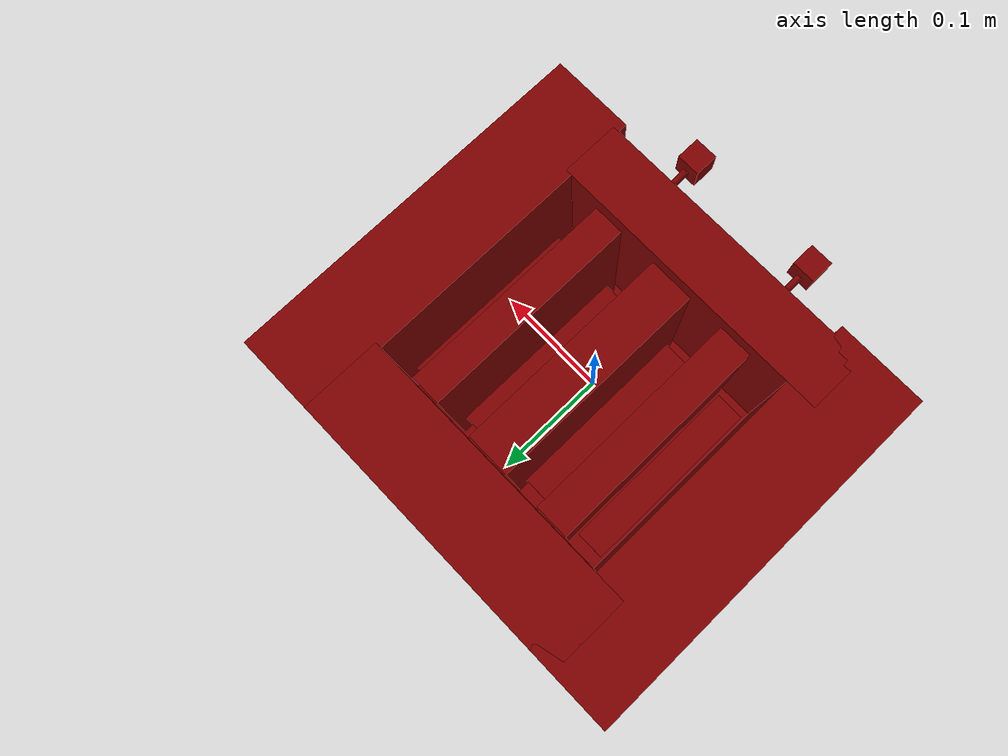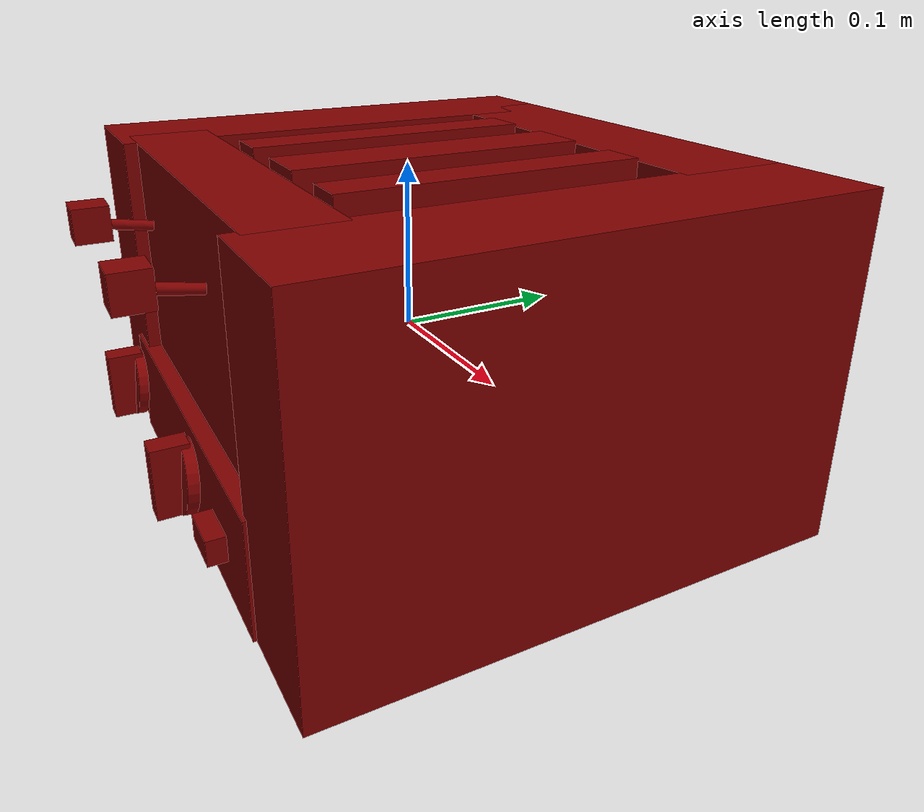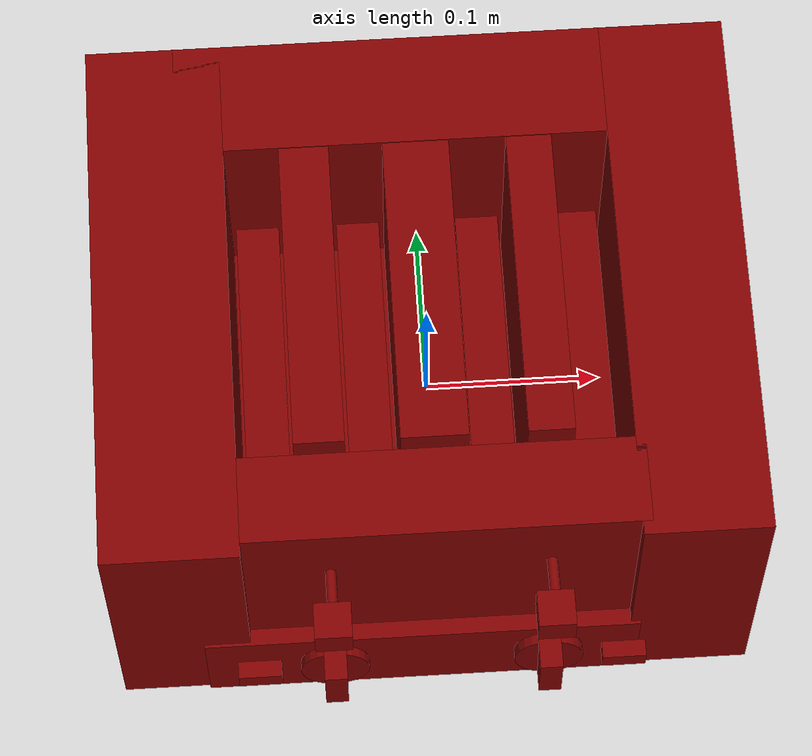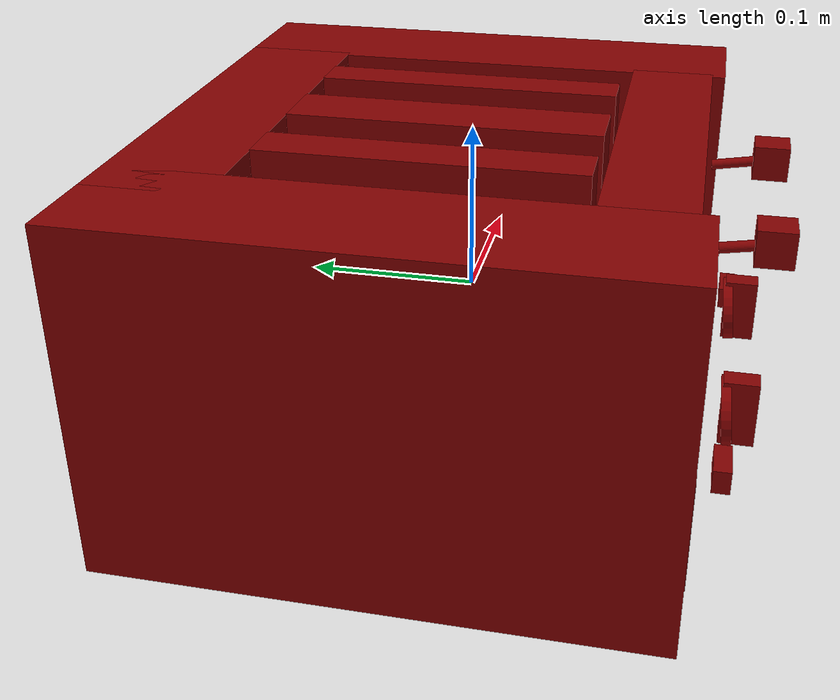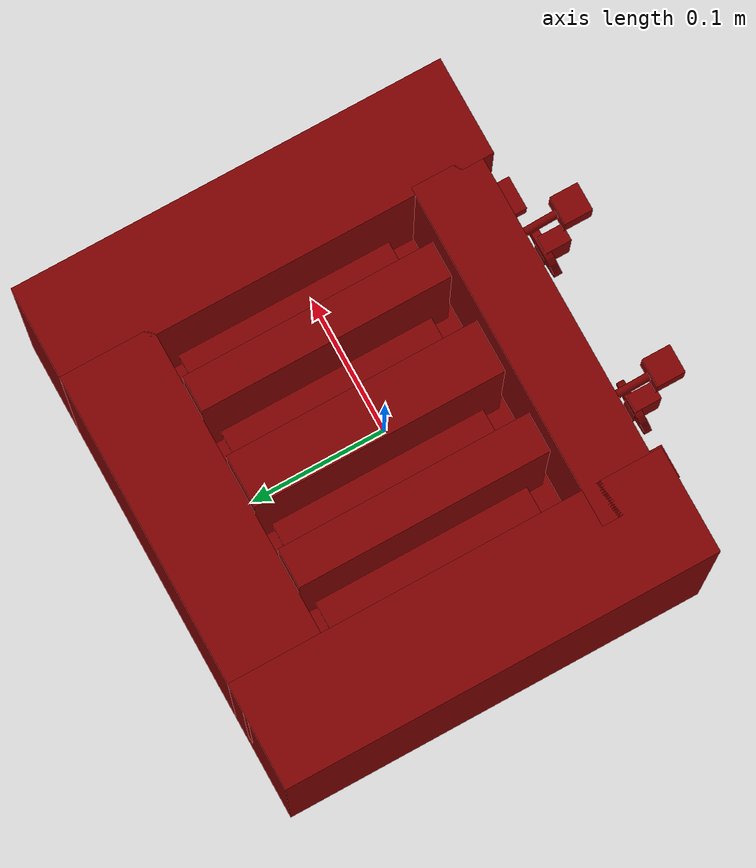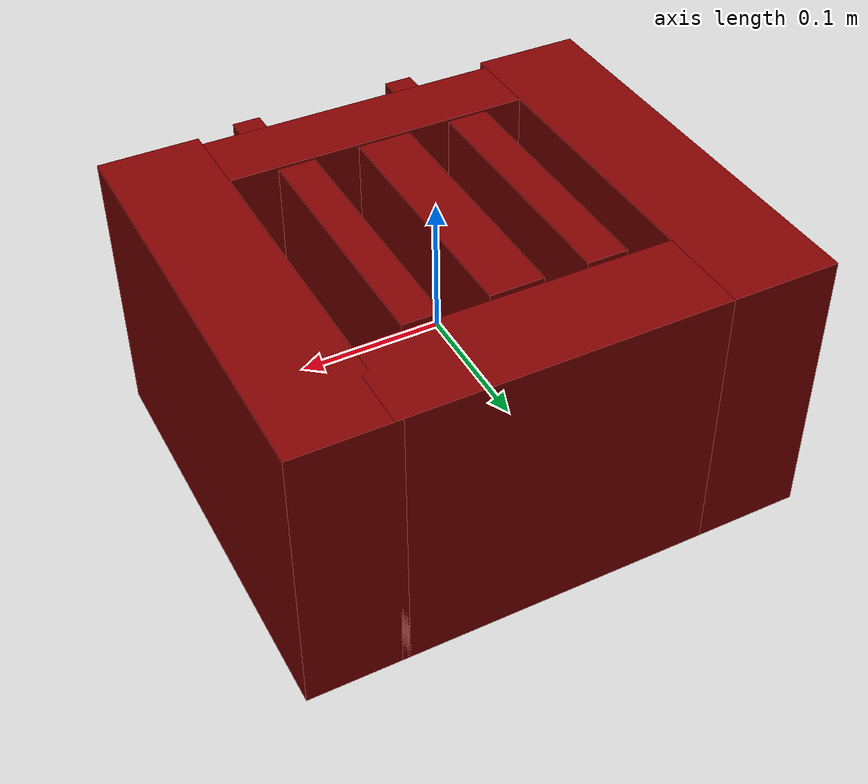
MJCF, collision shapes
<?xml version='1.0' encoding='UTF-8'?>
<mujoco model="model">
  <option timestep="0.002" gravity="0.0 0.0 -9.81"/>
  <compiler angle="radian"/>
  <asset>
    <mesh file="visuals/sideL_button_cancel.obj" name="sideL_button_cancel_vis"/>
    <mesh file="visuals/sideL_knob_doneness.obj" name="sideL_knob_doneness_vis"/>
    <mesh file="visuals/sideL_lever.obj" name="sideL_lever_vis"/>
    <mesh file="visuals/sideR_button_cancel.obj" name="sideR_button_cancel_vis"/>
    <mesh file="visuals/sideR_knob_doneness.obj" name="sideR_knob_doneness_vis"/>
    <mesh file="visuals/sideR_lever.obj" name="sideR_lever_vis"/>
    <mesh file="visuals/Body001.obj" name="Body001_vis"/>
    <mesh file="visuals/Body002.obj" name="Body002_vis"/>
    <texture file="visuals/T_BC001.png" name="Body001_material" type="2d"/>
    <material name="Body001_material" rgba="1 1 1 1.0" texture="Body001_material" shininess="0.4472135901451111" specular="0.3103448502657381"/>
    <texture file="visuals/T_BC001.png" name="sideL_button_cancel_material" type="2d"/>
    <material name="sideL_button_cancel_material" rgba="1 1 1 1.0" texture="sideL_button_cancel_material" shininess="0.4472135901451111" specular="0.3103448502657381"/>
    <texture file="visuals/T_BC001.png" name="sideL_knob_doneness_material" type="2d"/>
    <material name="sideL_knob_doneness_material" rgba="1 1 1 1.0" texture="sideL_knob_doneness_material" shininess="0.4472135901451111" specular="0.3103448502657381"/>
    <texture file="visuals/T_BC001.png" name="sideL_lever_material" type="2d"/>
    <material name="sideL_lever_material" rgba="1 1 1 1.0" texture="sideL_lever_material" shininess="0.4472135901451111" specular="0.3103448502657381"/>
    <texture file="visuals/T_BC001.png" name="sideR_button_cancel_material" type="2d"/>
    <material name="sideR_button_cancel_material" rgba="1 1 1 1.0" texture="sideR_button_cancel_material" shininess="0.4472135901451111" specular="0.3103448502657381"/>
    <texture file="visuals/T_BC001.png" name="sideR_knob_doneness_material" type="2d"/>
    <material name="sideR_knob_doneness_material" rgba="1 1 1 1.0" texture="sideR_knob_doneness_material" shininess="0.4472135901451111" specular="0.3103448502657381"/>
    <texture file="visuals/T_BC001.png" name="sideR_lever_material" type="2d"/>
    <material name="sideR_lever_material" rgba="1 1 1 1.0" texture="sideR_lever_material" shininess="0.4472135901451111" specular="0.3103448502657381"/>
    <texture file="visuals/T_BC001.png" name="Body002_material" type="2d"/>
    <material name="Body002_material" rgba="1 1 1 1.0" texture="Body002_material" shininess="0.4472135901451111" specular="8"/>
  </asset>
  <default>
    <default class="visual">
      <geom conaffinity="0" contype="0" group="1" type="mesh"/>
    </default>
    <default class="collision_1">
      <geom group="0" rgba="0.5 0 0 0.5" solref="0.004 1" solimp="0.998 0.998 0.001"/>
    </default>
    <default class="collision_2">
      <geom group="0" rgba="0.5 0 0 0.5" solref="0.004 1" solimp="0.998 0.998 0.001"/>
    </default>
    <default class="collision_3">
      <geom group="0" rgba="0.5 0 0 0.5" solref="0.004 1" solimp="0.998 0.998 0.001"/>
    </default>
    <default class="collision_4">
      <geom group="0" rgba="0.5 0 0 0.5" solref="0.004 1" solimp="0.998 0.998 0.001"/>
    </default>
    <default class="collision_5">
      <geom group="0" rgba="0.5 0 0 0.5" solref="0.004 1" solimp="0.998 0.998 0.001"/>
    </default>
    <default class="collision_6">
      <geom group="0" rgba="0.5 0 0 0.5" solref="0.004 1" solimp="0.998 0.998 0.001"/>
    </default>
    <default class="collision_7">
      <geom group="0" rgba="0.5 0 0 0.5" solref="0.004 1" solimp="0.998 0.998 0.001"/>
    </default>
    <default class="collision_8">
      <geom group="0" rgba="0.5 0 0 0.5" solref="0.004 1" solimp="0.998 0.998 0.001"/>
    </default>
    <default class="spawn">
      <geom group="0" rgba="1 1 1 0.5" contype="0" conaffinity="0"/>
      <site group="0" rgba="1 1 1 0.5"/>
    </default>
    <default class="region">
      <geom group="1" conaffinity="0" contype="0" rgba="0 1 0 0" mass="0"/>
    </default>
  </default>
  <worldbody>
    <body>
      <body name="object">
        <geom mesh="Body001_vis" type="mesh" solimp="0.998 0.998 0.001" solref="0.001 1" friction="0.95 0.3 0.1" class="visual" material="Body001_material"/>
        <geom type="box" pos="-0.1482546031475067 0.016965089365839958 0.0018764408305287361" size="0.038420096039772034 0.15769177675247192 0.10269986838102341" quat="1.0 0.0 0.0 0.0" class="collision_1"/>
        <geom type="box" pos="0.1456676721572876 0.016965089365839958 0.0018764389678835869" size="0.03576819598674774 0.15769177675247192 0.10269986838102341" quat="1.0 0.0 0.0 0.0" class="collision_1"/>
        <geom type="box" pos="0.06440521031618118 0.014274893328547478 0.003010571002960205" size="0.01301924791187048 0.09133340418338776 0.10383400321006775" quat="1.0 0.0 0.0 0.0" class="collision_1"/>
        <geom type="box" pos="-0.00018026563338935375 0.014274893328547478 0.0030105686746537685" size="0.018959015607833862 0.09133340418338776 0.10383400321006775" quat="1.0 0.0 0.0 0.0" class="collision_1"/>
        <geom type="box" pos="-0.06403946876525879 0.014274893328547478 0.003010571002960205" size="0.014267479069530964 0.09133340418338776 0.10383400321006775" quat="1.0 0.0 0.0 0.0" class="collision_1"/>
        <geom type="box" pos="-0.010518677532672882 0.14093542098999023 0.0018764445558190346" size="0.12598811089992523 0.0337214432656765 0.10269986838102341" quat="1.0 0.0 0.0 0.0" class="collision_1"/>
        <geom type="box" pos="-0.010518677532672882 -0.10772392153739929 0.0018764445558190346" size="0.12598811089992523 0.025044148787856102 0.10269986838102341" quat="1.0 0.0 0.0 0.0" class="collision_1"/>
        <geom type="box" pos="-0.010518677532672882 -0.0022100601345300674 -0.06612826138734818" size="0.12598811089992523 0.14041154086589813 0.03469515219330788" quat="1.0 0.0 0.0 0.0" class="collision_1"/>
        <body name="sideL_button_cancel">
          <joint axis="0.0 0.9961947202682495 -0.08715573698282242" pos="-0.10478411614894867 -0.1557305008172989 -0.04199861362576485" limited="true" name="sideL_button_cancel_joint" range="0.0 0.002" type="slide" damping="1" frictionloss="1" armature=".01" stiffness="4" springref="-1"/>
          <geom mesh="sideL_button_cancel_vis" type="mesh" solimp="0.998 0.998 0.001" solref="0.001 1" friction="0.95 0.3 0.1" class="visual" material="sideL_button_cancel_material"/>
          <geom class="collision_2" type="box" pos="-0.10511312633752823 -0.15583738684654236 -0.042072657495737076" size="0.01255270279943943 0.004949576687067747 0.006893578916788101" quat="1.0 0.0 0.0 0.0" name="sideL_button_cancel_main"/>
        </body>
        <body name="sideL_knob_doneness">
          <joint axis="0.0 0.9961947202682495 -0.08715573698282242" pos="-0.06161961704492569 -0.16064514219760895 -0.032041169703006744" limited="true" name="sideL_knob_doneness_joint" range="0.0 5.235987755982989" type="hinge" damping="0.05" frictionloss="0.75" armature="1"/>
          <geom mesh="sideL_knob_doneness_vis" type="mesh" solimp="0.998 0.998 0.001" solref="0.001 1" friction="0.95 0.3 0.1" class="visual" material="sideL_knob_doneness_material"/>
          <geom class="collision_3" type="box" pos="-0.061623793095350266 -0.163234144449234 -0.0310358963906765" size="0.006472193170338869 0.00987290684133768 0.019552158191800117" quat="1.0 0.0 0.0 0.0" name="sideL_knob_doneness_main" friction="100 0.5 0.01"/>
          <geom type="cylinder" pos="-0.06180175021290779 -0.15674912929534912 -0.032430872321128845" size="0.01974140852689743 0.0027833119966089725" quat="0.7386357188224792 0.6741048097610474 1.5062841164071406e-16 -8.694152138590664e-19" class="collision_3" friction="100 0.5 0.01"/>
        </body>
        <body name="sideL_lever">
          <joint axis="0.0 -0.1736481785774231 -0.9848079085350037" pos="-0.06149708479642868 -0.15705041587352753 0.07098284363746643" limited="true" name="sideL_lever_joint" range="0.0 0.045" type="slide" damping="1" frictionloss="1" armature=".01" stiffness="1.2" springref="-0.8"/>
          <geom class="region" name="reg_sideL_slotR" type="box" pos="-0.033844126388430595 0.011783130466938019 0.10568663664162159" size="0.012001503095030785 0.0823441351056099 0.07600007562339306"/>
          <geom class="region" name="reg_sideL_slotL" type="box" pos="-0.09279856458306313 0.011783130466938019 0.10568663664162159" size="0.012726837605237962 0.0823441351056099 0.07600007562339306"/>
          <geom mesh="sideL_lever_vis" type="mesh" solimp="0.998 0.998 0.001" solref="0.001 1" friction="0.95 0.3 0.1" class="visual" material="sideL_lever_material"/>
          <geom class="collision_4" type="box" pos="-0.06161903589963913 -0.1714213788509369 0.07134950906038284" size="0.010336915962398052 0.010336915962398052 0.010336915962398052" quat="1.0 0.0 0.0 0.0" name="sideL_lever_handle"/>
          <geom class="collision_4" type="box" pos="-0.09388739615678787 0.01766873337328434 0.02324608713388443" size="0.012499979697167873 0.07910026609897614 0.0011989553458988667" quat="1.0 0.0 0.0 0.0" name="sideL_slotL_floor"/>
          <geom class="collision_4" type="box" pos="-0.03491717949509621 0.01766873337328434 0.023246049880981445" size="0.012499998323619366 0.07910040020942688 0.001198967918753624" quat="1.0 0.0 0.0 0.0" name="sideL_slotR_floor"/>
          <geom type="cylinder" pos="-0.06139659136533737 -0.15038755536079407 0.06682884693145752" size="0.0030461165588349104 0.013536262325942516" quat="0.7638219594955444 0.6454269886016846 1.4331355422223413e-16 -2.2430666616558744e-23" class="collision_4"/>
        </body>
        <body name="sideR_button_cancel">
          <joint axis="0.0 0.9961947202682495 -0.08715573698282242" pos="0.10423554480075836 -0.15572504699230194 -0.0420452319085598" limited="true" name="sideR_button_cancel_joint" range="0.0 0.002" type="slide" damping="1" frictionloss="1" armature=".01" stiffness="2.2" springref="-1"/>
          <geom mesh="sideR_button_cancel_vis" type="mesh" solimp="0.998 0.998 0.001" solref="0.001 1" friction="0.95 0.3 0.1" class="visual" material="sideR_button_cancel_material"/>
          <geom class="collision_5" type="box" pos="0.10472682863473892 -0.15583738684654236 -0.042072657495737076" size="0.01255270279943943 0.004949576687067747 0.006893578916788101" quat="1.0 0.0 0.0 0.0" name="sideR_button_cancel_main"/>
        </body>
        <body name="sideR_knob_doneness">
          <joint axis="0.0 0.9961947202682495 -0.08715573698282242" pos="0.06107977777719498 -0.16064514219760895 -0.032041169703006744" limited="true" name="sideR_knob_doneness_joint" range="0.0 5.235987755982989" type="hinge" damping="0.05" frictionloss="0.75" armature="1"/>
          <geom mesh="sideR_knob_doneness_vis" type="mesh" solimp="0.998 0.998 0.001" solref="0.001 1" friction="0.95 0.3 0.1" class="visual" material="sideR_knob_doneness_material"/>
          <geom class="collision_6" type="box" pos="0.06107211112976074 -0.163234144449234 -0.0310358963906765" size="0.006472193170338869 0.00987290684133768 0.019552158191800117" quat="1.0 0.0 0.0 0.0" name="sideR_knob_doneness_main" friction="100 0.5 0.01"/>
          <geom type="cylinder" pos="0.060872890055179596 -0.1564464271068573 -0.032363411039114" size="0.01974140852689743 0.003017155919224024" quat="0.7386357188224792 0.6741048097610474 1.5062841164071406e-16 -8.694152138590664e-19" class="collision_6" friction="100 0.5 0.01"/>
        </body>
        <body name="sideR_lever">
          <joint axis="0.0 -0.1736481785774231 -0.9848079085350037" pos="0.06106232851743698 -0.15705041587352753 0.07098284363746643" limited="true" name="sideR_lever_joint" range="0.0 0.045" type="slide" damping="1" frictionloss="1" armature=".01" stiffness="1.2" springref="-0.8"/>
          <geom class="region" name="reg_sideR_slotR" type="box" pos="0.0933745726943016 0.011783130466938019 0.10568663664162159" size="0.01450325345993042 0.0823441351056099 0.07600007562339306"/>
          <geom class="region" name="reg_sideR_slotL" type="box" pos="0.03568267822265625 0.011783130466938019 0.10568663664162159" size="0.013551143765449525 0.0823441351056099 0.07600007562339306"/>
          <geom mesh="sideR_lever_vis" type="mesh" solimp="0.998 0.998 0.001" solref="0.001 1" friction="0.95 0.3 0.1" class="visual" material="sideR_lever_material"/>
          <geom class="collision_7" type="box" pos="0.06058303639292717 -0.1714213788509369 0.07134950906038284" size="0.01033690758049488 0.01033690758049488 0.01033690758049488" quat="1.0 0.0 0.0 0.0" name="sideR_lever_handle"/>
          <geom class="collision_7" type="box" pos="0.035156525671482086 0.01766873337328434 0.023246049880981445" size="0.01249999925494194 0.07910040020942688 0.0011989623308181763" quat="1.0 0.0 0.0 0.0" name="sideR_slotL_floor"/>
          <geom class="collision_7" type="box" pos="0.09329363703727722 0.01766873337328434 0.023246049880981445" size="0.012499998323619366 0.07910040020942688 0.0011989623308181763" quat="1.0 0.0 0.0 0.0" name="sideR_slotR_floor"/>
          <geom type="cylinder" pos="0.06129886209964752 -0.15038755536079407 0.06682884693145752" size="0.0030461165588349104 0.013536262325942516" quat="0.7638219594955444 0.6454269886016846 1.4331355422223413e-16 -2.2430666616558744e-23" class="collision_7"/>
        </body>
        <body name="Body002">
          <geom mesh="Body002_vis" type="mesh" solimp="0.998 0.998 0.001" solref="0.001 1" friction="0.95 0.3 0.1" class="visual" material="Body002_material"/>
        </body>
        <geom class="region" name="reg_main" type="box" pos="3.725290298461914e-09 0.011278336867690086 -1.862645149230957e-09" size="0.18758487498760223 0.1716416755914688 0.1078083792924881"/>
      </body>
    </body>
  </worldbody>
  <actuator>
    <motor name="sideL_button_cancel_joint_actuator" joint="sideL_button_cancel_joint" gear="0.5"/>
    <motor name="sideL_knob_doneness_joint_actuator" joint="sideL_knob_doneness_joint" gear="5"/>
    <motor name="sideL_lever_joint_actuator" joint="sideL_lever_joint" gear="1.5"/>
    <motor name="sideR_button_cancel_joint_actuator" joint="sideR_button_cancel_joint" gear="0.5"/>
    <motor name="sideR_knob_doneness_joint_actuator" joint="sideR_knob_doneness_joint" gear="5"/>
    <motor name="sideR_lever_joint_actuator" joint="sideR_lever_joint" gear="1.5"/>
  </actuator>
</mujoco>
